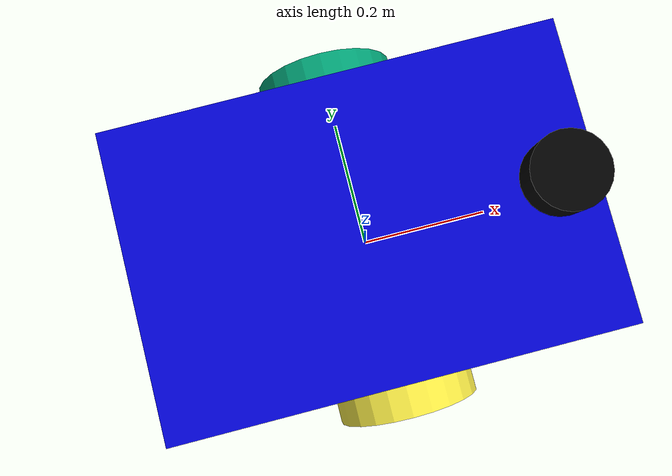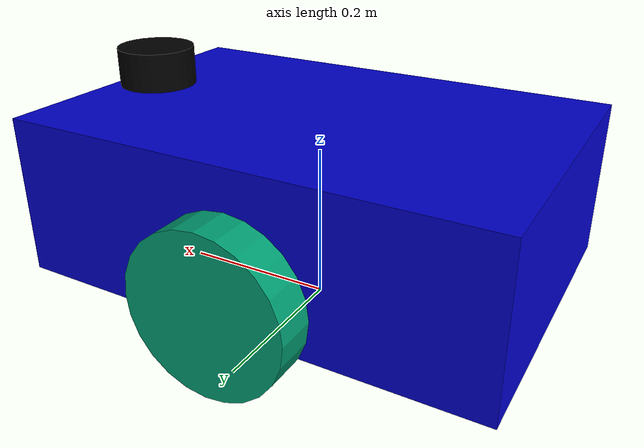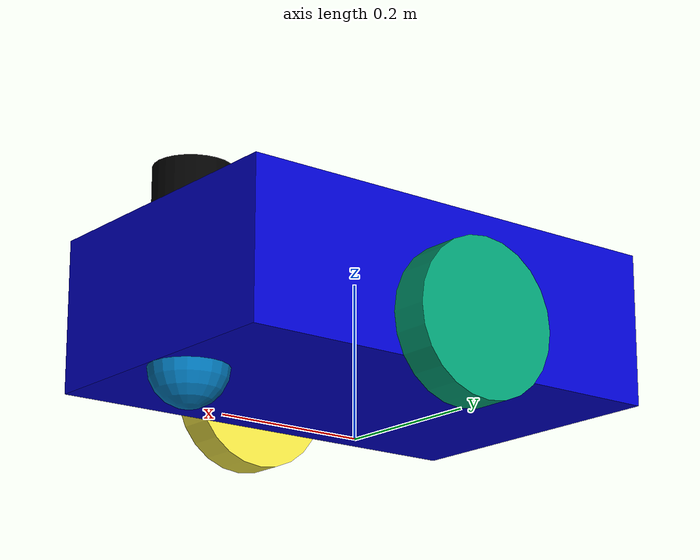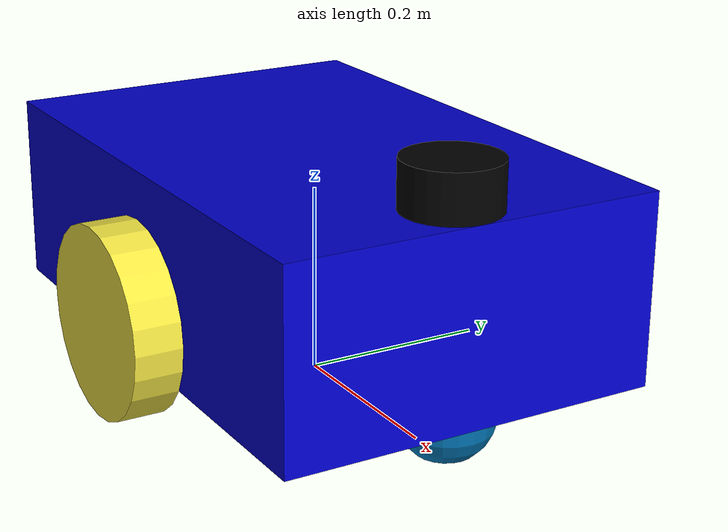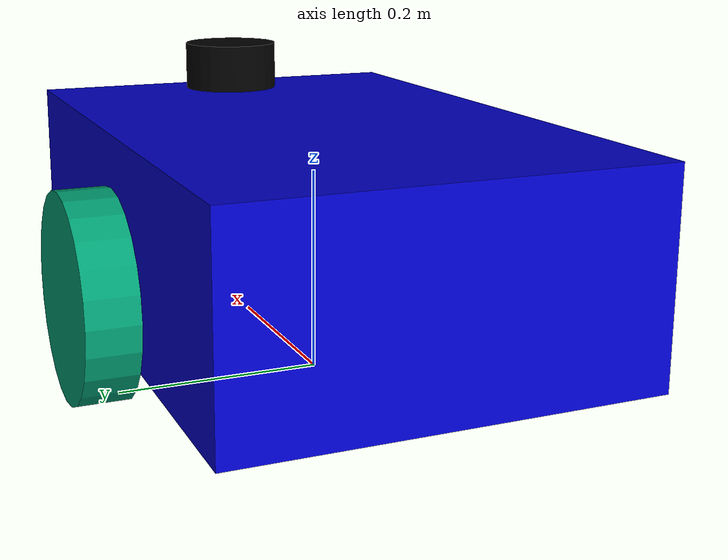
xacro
<?xml version="1.0"?>
<robot name="warehouse_amr" xmlns:xacro="http://ros.org/wiki/xacro">

  <link name="base_footprint"/>
  <joint name="base_footprint_joint" type="fixed">
    <parent link="base_footprint"/>
    <child link="base_link"/>
    <origin xyz="0 0 0.15" rpy="0 0 0"/>
  </joint>

  <link name="base_link">
    <visual><geometry><box size="0.6 0.4 0.2"/></geometry><material name="blue"><color rgba="0 0 0.8 1"/></material></visual>
    <collision><geometry><box size="0.6 0.4 0.2"/></geometry></collision>
    <inertial><mass value="10.0"/><inertia ixx="0.1" ixy="0.0" ixz="0.0" iyy="0.1" iyz="0.0" izz="0.1"/></inertial>
  </link>

  <link name="left_wheel">
    <visual><geometry><cylinder radius="0.1" length="0.05"/></geometry></visual>
    <collision><geometry><cylinder radius="0.1" length="0.05"/></geometry></collision>
    <inertial><mass value="1.0"/><inertia ixx="0.01" ixy="0.0" ixz="0.0" iyy="0.01" iyz="0.0" izz="0.01"/></inertial>
  </link>
  <joint name="left_wheel_joint" type="continuous">
    <parent link="base_link"/><child link="left_wheel"/>
    <origin xyz="0 0.225 -0.05" rpy="-1.5707 0 0"/>
    <axis xyz="0 0 1"/>
  </joint>

  <link name="right_wheel">
    <visual><geometry><cylinder radius="0.1" length="0.05"/></geometry></visual>
    <collision><geometry><cylinder radius="0.1" length="0.05"/></geometry></collision>
    <inertial><mass value="1.0"/><inertia ixx="0.01" ixy="0.0" ixz="0.0" iyy="0.01" iyz="0.0" izz="0.01"/></inertial>
  </link>
  <joint name="right_wheel_joint" type="continuous">
    <parent link="base_link"/><child link="right_wheel"/>
    <origin xyz="0 -0.225 -0.05" rpy="-1.5707 0 0"/>
    <axis xyz="0 0 1"/>
  </joint>

  <link name="caster_wheel">
    <visual><geometry><sphere radius="0.05"/></geometry></visual>
    <collision><geometry><sphere radius="0.05"/></geometry></collision>
    <inertial><mass value="0.5"/><inertia ixx="0.001" ixy="0.0" ixz="0.0" iyy="0.001" iyz="0.0" izz="0.001"/></inertial>
  </link>
  <joint name="caster_joint" type="fixed">
    <parent link="base_link"/><child link="caster_wheel"/>
    <origin xyz="0.25 0 -0.1" rpy="0 0 0"/>
  </joint>

  <link name="laser_link">
    <visual><geometry><cylinder radius="0.05" length="0.05"/></geometry><material name="black"><color rgba="0 0 0 1"/></material></visual>
    <collision><geometry><cylinder radius="0.05" length="0.05"/></geometry></collision>
    <inertial><mass value="0.2"/><inertia ixx="0.001" ixy="0.0" ixz="0.0" iyy="0.001" iyz="0.0" izz="0.001"/></inertial>
  </link>
  <joint name="laser_joint" type="fixed">
    <parent link="base_link"/><child link="laser_link"/>
    <origin xyz="0.25 0 0.125" rpy="0 0 0"/>
  </joint>

  <gazebo reference="laser_link">
    <sensor name="lidar" type="gpu_lidar">
      <pose>0 0 0 0 0 0</pose>
      <topic>scan</topic>
      <update_rate>10</update_rate>
      <gz_frame_id>laser_link</gz_frame_id>
      <ray>
        <scan>
          <horizontal><samples>360</samples><resolution>1</resolution><min_angle>-3.14159</min_angle><max_angle>3.14159</max_angle></horizontal>
        </scan>
        <range><min>0.1</min><max>10.0</max><resolution>0.01</resolution></range>
      </ray>
      <always_on>true</always_on>
      <visualize>true</visualize>
    </sensor>
  </gazebo>

  <gazebo>
    <plugin filename="gz-sim-diff-drive-system" name="gz::sim::systems::DiffDrive">
      <left_joint>left_wheel_joint</left_joint>
      <right_joint>right_wheel_joint</right_joint>
      <wheel_separation>0.45</wheel_separation>
      <wheel_radius>0.1</wheel_radius>
      <odom_publish_frequency>30</odom_publish_frequency>
      <topic>cmd_vel</topic>
      <odom_topic>odom</odom_topic>
      <tf_topic>tf</tf_topic>
      <frame_id>odom</frame_id>
      <child_frame_id>base_footprint</child_frame_id>
    </plugin>
  </gazebo>
</robot>
